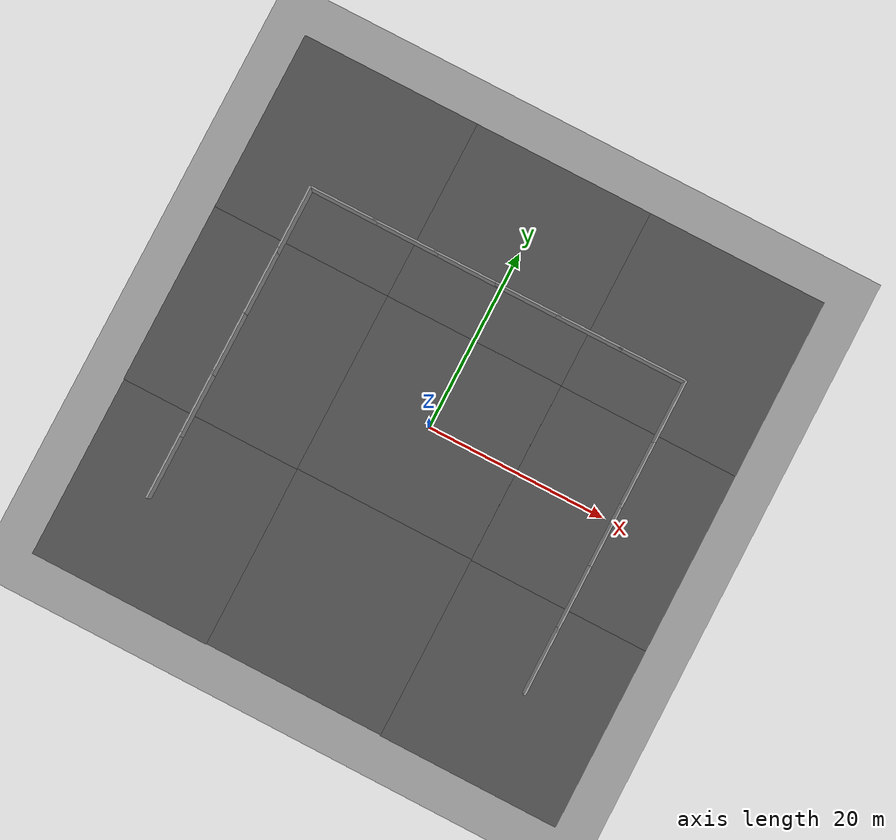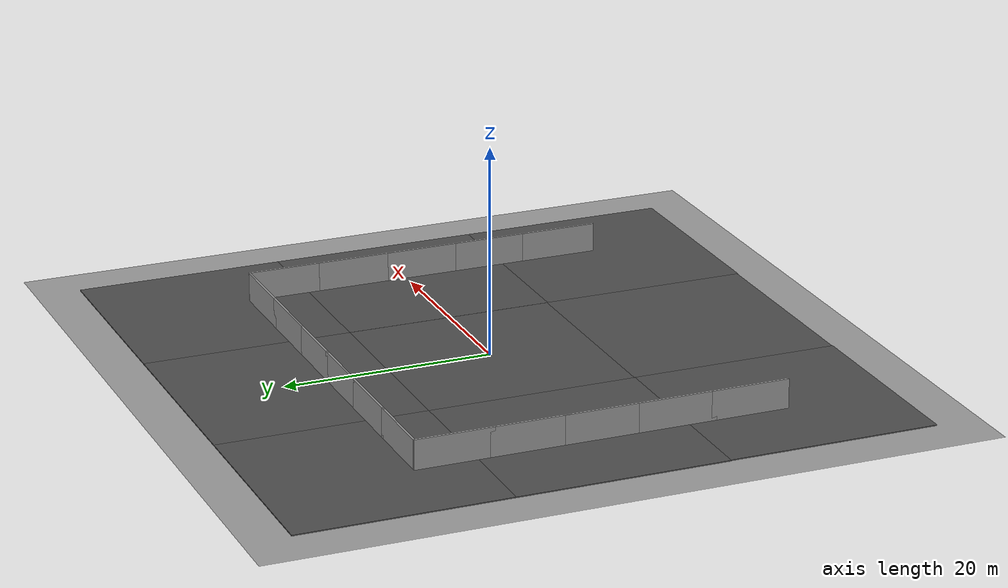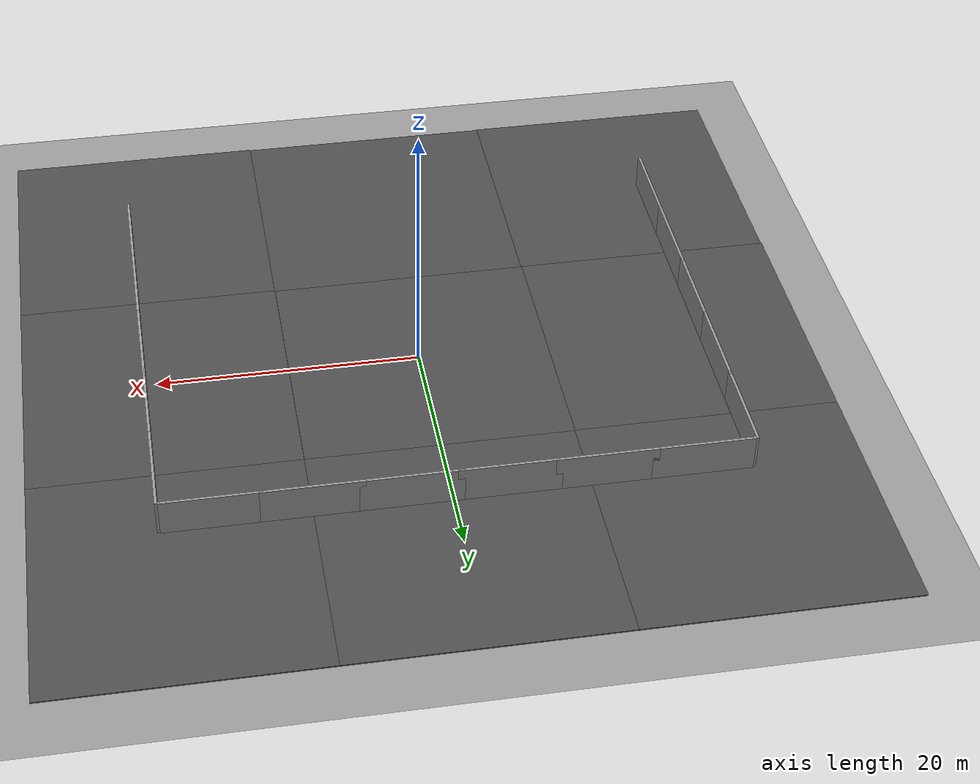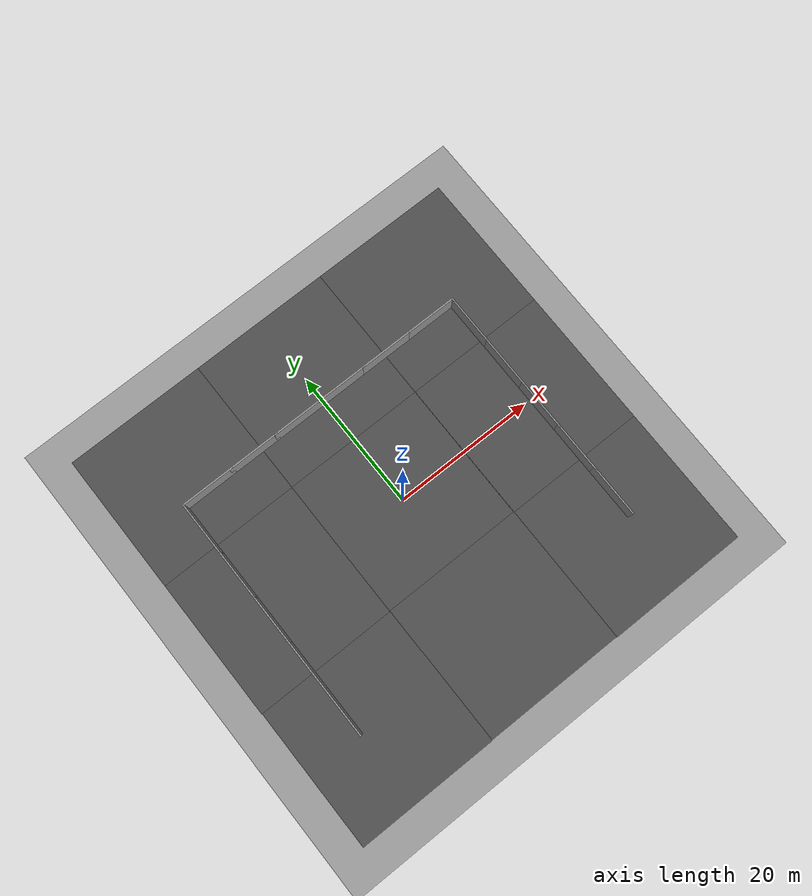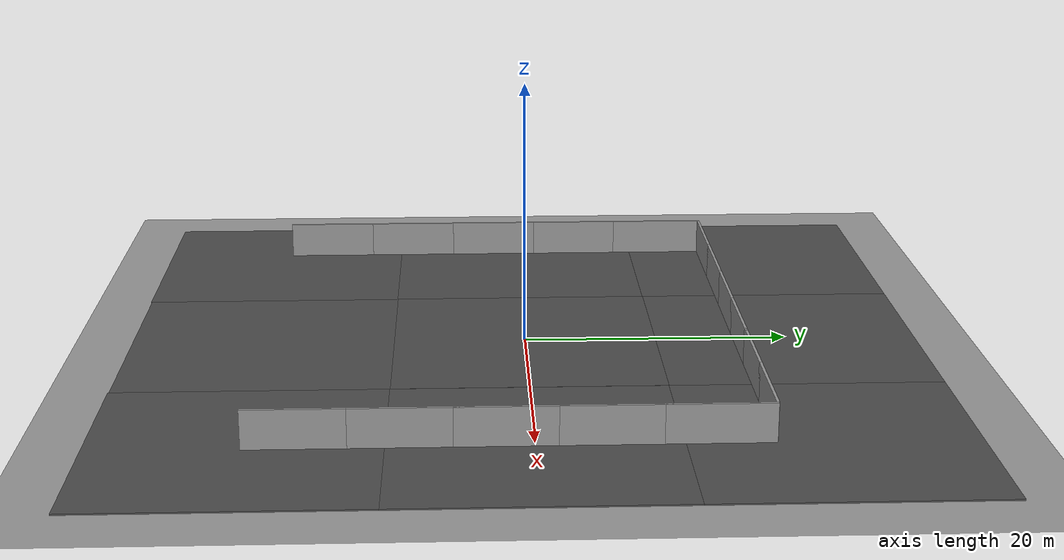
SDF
<sdf version="1.4">
 <world name="maskor_world">
  <scene><ambient>0.5 0.5 0.5 1</ambient><background>0.5 0.5 0.5 1</background><shadows>1</shadows></scene>
  <physics type="ode">
   <gravity>0 0 -9.81</gravity>
   <ode>
    <solver><type>quick</type><iters>40</iters><sor>1</sor></solver>
    <constraints>
     <cfm>0</cfm>
     <erp>0.2</erp>
     <contact_max_correcting_vel>100</contact_max_correcting_vel>
     <contact_surface_layer>0</contact_surface_layer>
    </constraints>
   </ode>
   <real_time_update_rate>100</real_time_update_rate>
   <max_step_size>0.01</max_step_size>
   <real_time_factor>1</real_time_factor>
  </physics>
  <light name="sun" type="directional">
   <pose>0 0 10 0 -0 0</pose>
   <diffuse>0.8 0.8 0.8 1</diffuse>
   <specular>0.2 0.2 0.2 1</specular>
   <attenuation>
    <range>1000</range>
    <constant>0.9</constant>
    <linear>0.01</linear>
    <quadratic>0.001</quadratic>
   </attenuation>
   <direction>-0.5 0.1 -0.9</direction>
  </light>
  <model name="ground_plane_1">
   <static>1</static>
   <link name="link">
    <collision name="collision">
     <geometry><plane><normal>0 0 1</normal><size>100 100</size></plane></geometry>
     <surface><friction><ode><mu>100</mu><mu2>50</mu2></ode></friction></surface>
    </collision>
    <visual name="visual">
     <cast_shadows>0</cast_shadows>
     <geometry><plane><normal>0 0 1</normal><size>100 100</size></plane></geometry>
     <material>
      <script><uri>file://media/materials/scripts/gazebo.material</uri><name>Gazebo/Grey</name></script>
     </material>
    </visual>
    <velocity_decay><linear>0</linear><angular>0</angular></velocity_decay>
   </link>
  </model>
  <model name="asphalt_plane_1">
   <static>1</static>
   <link name="link">
    <collision name="collision"><geometry><box><size>20 20 0.1</size></box></geometry></collision>
    <visual name="visual">
     <cast_shadows>0</cast_shadows>
     <geometry><box><size>20 20 0.1</size></box></geometry>
     <material>
      <script>
       <uri>model://asphalt_plane/materials/scripts</uri>
       <uri>model://asphalt_plane/materials/textures</uri>
       <name>vrc/asphalt</name>
      </script>
     </material>
    </visual>
    <velocity_decay><linear>0</linear><angular>0</angular></velocity_decay>
   </link>
   <pose>-0.016146 0.033011 0 0 -0 0</pose>
  </model>
  <model name="asphalt_plane_2">
   <static>1</static>
   <link name="link">
    <collision name="collision"><geometry><box><size>20 20 0.1</size></box></geometry></collision>
    <visual name="visual">
     <cast_shadows>0</cast_shadows>
     <geometry><box><size>20 20 0.1</size></box></geometry>
     <material>
      <script>
       <uri>model://asphalt_plane/materials/scripts</uri>
       <uri>model://asphalt_plane/materials/textures</uri>
       <name>vrc/asphalt</name>
      </script>
     </material>
    </visual>
    <velocity_decay><linear>0</linear><angular>0</angular></velocity_decay>
   </link>
   <pose>0.023903 -19.9181 0 0 -0 0</pose>
  </model>
  <model name="asphalt_plane_3">
   <static>1</static>
   <link name="link">
    <collision name="collision"><geometry><box><size>20 20 0.1</size></box></geometry></collision>
    <visual name="visual">
     <cast_shadows>0</cast_shadows>
     <geometry><box><size>20 20 0.1</size></box></geometry>
     <material>
      <script>
       <uri>model://asphalt_plane/materials/scripts</uri>
       <uri>model://asphalt_plane/materials/textures</uri>
       <name>vrc/asphalt</name>
      </script>
     </material>
    </visual>
    <velocity_decay><linear>0</linear><angular>0</angular></velocity_decay>
   </link>
   <pose>0 20 0 0 -0 0</pose>
  </model>
  <model name="asphalt_plane_4">
   <static>1</static>
   <link name="link">
    <collision name="collision"><geometry><box><size>20 20 0.1</size></box></geometry></collision>
    <visual name="visual">
     <cast_shadows>0</cast_shadows>
     <geometry><box><size>20 20 0.1</size></box></geometry>
     <material>
      <script>
       <uri>model://asphalt_plane/materials/scripts</uri>
       <uri>model://asphalt_plane/materials/textures</uri>
       <name>vrc/asphalt</name>
      </script>
     </material>
    </visual>
    <velocity_decay><linear>0</linear><angular>0</angular></velocity_decay>
   </link>
   <pose>-20 0 0 0 -0 0</pose>
  </model>
  <model name="asphalt_plane_5">
   <static>1</static>
   <link name="link">
    <collision name="collision"><geometry><box><size>20 20 0.1</size></box></geometry></collision>
    <visual name="visual">
     <cast_shadows>0</cast_shadows>
     <geometry><box><size>20 20 0.1</size></box></geometry>
     <material>
      <script>
       <uri>model://asphalt_plane/materials/scripts</uri>
       <uri>model://asphalt_plane/materials/textures</uri>
       <name>vrc/asphalt</name>
      </script>
     </material>
    </visual>
    <velocity_decay><linear>0</linear><angular>0</angular></velocity_decay>
   </link>
   <pose>-19.9316 -19.9871 0 0 -0 0</pose>
  </model>
  <model name="asphalt_plane_6">
   <static>1</static>
   <link name="link">
    <collision name="collision"><geometry><box><size>20 20 0.1</size></box></geometry></collision>
    <visual name="visual">
     <cast_shadows>0</cast_shadows>
     <geometry><box><size>20 20 0.1</size></box></geometry>
     <material>
      <script>
       <uri>model://asphalt_plane/materials/scripts</uri>
       <uri>model://asphalt_plane/materials/textures</uri>
       <name>vrc/asphalt</name>
      </script>
     </material>
    </visual>
    <velocity_decay><linear>0</linear><angular>0</angular></velocity_decay>
   </link>
   <pose>-20 20 0 0 -0 0</pose>
  </model>
  <model name="asphalt_plane_7">
   <static>1</static>
   <link name="link">
    <collision name="collision"><geometry><box><size>20 20 0.1</size></box></geometry></collision>
    <visual name="visual">
     <cast_shadows>0</cast_shadows>
     <geometry><box><size>20 20 0.1</size></box></geometry>
     <material>
      <script>
       <uri>model://asphalt_plane/materials/scripts</uri>
       <uri>model://asphalt_plane/materials/textures</uri>
       <name>vrc/asphalt</name>
      </script>
     </material>
    </visual>
    <velocity_decay><linear>0</linear><angular>0</angular></velocity_decay>
   </link>
   <pose>20 0 0 0 -0 0</pose>
  </model>
  <model name="asphalt_plane_8">
   <static>1</static>
   <link name="link">
    <collision name="collision"><geometry><box><size>20 20 0.1</size></box></geometry></collision>
    <visual name="visual">
     <cast_shadows>0</cast_shadows>
     <geometry><box><size>20 20 0.1</size></box></geometry>
     <material>
      <script>
       <uri>model://asphalt_plane/materials/scripts</uri>
       <uri>model://asphalt_plane/materials/textures</uri>
       <name>vrc/asphalt</name>
      </script>
     </material>
    </visual>
    <velocity_decay><linear>0</linear><angular>0</angular></velocity_decay>
   </link>
   <pose>20 -20 0 0 -0 0</pose>
  </model>
  <model name="asphalt_plane_9">
   <static>1</static>
   <link name="link">
    <collision name="collision"><geometry><box><size>20 20 0.1</size></box></geometry></collision>
    <visual name="visual">
     <cast_shadows>0</cast_shadows>
     <geometry><box><size>20 20 0.1</size></box></geometry>
     <material>
      <script>
       <uri>model://asphalt_plane/materials/scripts</uri>
       <uri>model://asphalt_plane/materials/textures</uri>
       <name>vrc/asphalt</name>
      </script>
     </material>
    </visual>
    <velocity_decay><linear>0</linear><angular>0</angular></velocity_decay>
   </link>
   <pose>20 20 0 0 -0 0</pose>
  </model>
  <model name="grey_wall_1">
   <static>1</static>
   <link name="link">
    <pose>0 0 1.4 0 -0 0</pose>
    <collision name="collision"><geometry><box><size>7.5 0.2 2.8</size></box></geometry></collision>
    <visual name="visual">
     <cast_shadows>0</cast_shadows>
     <geometry><box><size>7.5 0.2 2.8</size></box></geometry>
     <material>
      <script>
       <uri>model://grey_wall/materials/scripts</uri>
       <uri>model://grey_wall/materials/textures</uri>
       <name>vrc/grey_wall</name>
      </script>
     </material>
    </visual>
    <velocity_decay><linear>0</linear><angular>0</angular></velocity_decay>
   </link>
   <pose>-18 16 0.2 0 -0 0</pose>
  </model>
  <model name="grey_wall_2">
   <static>1</static>
   <link name="link">
    <pose>0 0 1.4 0 -0 0</pose>
    <collision name="collision"><geometry><box><size>7.5 0.2 2.8</size></box></geometry></collision>
    <visual name="visual">
     <cast_shadows>0</cast_shadows>
     <geometry><box><size>7.5 0.2 2.8</size></box></geometry>
     <material>
      <script>
       <uri>model://grey_wall/materials/scripts</uri>
       <uri>model://grey_wall/materials/textures</uri>
       <name>vrc/grey_wall</name>
      </script>
     </material>
    </visual>
    <velocity_decay><linear>0</linear><angular>0</angular></velocity_decay>
   </link>
   <pose>-11 16 0.2 0 -0 0</pose>
  </model>
  <model name="grey_wall_3">
   <static>1</static>
   <link name="link">
    <pose>0 0 1.4 0 -0 0</pose>
    <collision name="collision"><geometry><box><size>7.5 0.2 2.8</size></box></geometry></collision>
    <visual name="visual">
     <cast_shadows>0</cast_shadows>
     <geometry><box><size>7.5 0.2 2.8</size></box></geometry>
     <material>
      <script>
       <uri>model://grey_wall/materials/scripts</uri>
       <uri>model://grey_wall/materials/textures</uri>
       <name>vrc/grey_wall</name>
      </script>
     </material>
    </visual>
    <velocity_decay><linear>0</linear><angular>0</angular></velocity_decay>
   </link>
   <pose>-4 16 0.2 0 -0 0</pose>
  </model>
  <model name="grey_wall_4">
   <static>1</static>
   <link name="link">
    <pose>0 0 1.4 0 -0 0</pose>
    <collision name="collision"><geometry><box><size>7.5 0.2 2.8</size></box></geometry></collision>
    <visual name="visual">
     <cast_shadows>0</cast_shadows>
     <geometry><box><size>7.5 0.2 2.8</size></box></geometry>
     <material>
      <script>
       <uri>model://grey_wall/materials/scripts</uri>
       <uri>model://grey_wall/materials/textures</uri>
       <name>vrc/grey_wall</name>
      </script>
     </material>
    </visual>
    <velocity_decay><linear>0</linear><angular>0</angular></velocity_decay>
   </link>
   <pose>3 16 0.2 0 -0 0</pose>
  </model>
  <model name="grey_wall_5">
   <static>1</static>
   <link name="link">
    <pose>0 0 1.4 0 -0 0</pose>
    <collision name="collision"><geometry><box><size>7.5 0.2 2.8</size></box></geometry></collision>
    <visual name="visual">
     <cast_shadows>0</cast_shadows>
     <geometry><box><size>7.5 0.2 2.8</size></box></geometry>
     <material>
      <script>
       <uri>model://grey_wall/materials/scripts</uri>
       <uri>model://grey_wall/materials/textures</uri>
       <name>vrc/grey_wall</name>
      </script>
     </material>
    </visual>
    <velocity_decay><linear>0</linear><angular>0</angular></velocity_decay>
   </link>
   <pose>10 16 0.2 0 -0 0</pose>
  </model>
  <model name="grey_wall_6">
   <static>1</static>
   <link name="link">
    <pose>0 0 1.4 0 -0 0</pose>
    <collision name="collision"><geometry><box><size>7.5 0.2 2.8</size></box></geometry></collision>
    <visual name="visual">
     <cast_shadows>0</cast_shadows>
     <geometry><box><size>7.5 0.2 2.8</size></box></geometry>
     <material>
      <script>
       <uri>model://grey_wall/materials/scripts</uri>
       <uri>model://grey_wall/materials/textures</uri>
       <name>vrc/grey_wall</name>
      </script>
     </material>
    </visual>
    <velocity_decay><linear>0</linear><angular>0</angular></velocity_decay>
   </link>
   <pose>17 16 0.2 0 -0 0</pose>
  </model>
  <model name="grey_wall_7">
   <static>1</static>
   <link name="link">
    <pose>0 0 1.4 0 -0 0</pose>
    <collision name="collision"><geometry><box><size>7.5 0.2 2.8</size></box></geometry></collision>
    <visual name="visual">
     <cast_shadows>0</cast_shadows>
     <geometry><box><size>7.5 0.2 2.8</size></box></geometry>
     <material>
      <script>
       <uri>model://grey_wall/materials/scripts</uri>
       <uri>model://grey_wall/materials/textures</uri>
       <name>vrc/grey_wall</name>
      </script>
     </material>
    </visual>
    <velocity_decay><linear>0</linear><angular>0</angular></velocity_decay>
   </link>
   <pose>20.85 12.3 0.2 0 -0 1.5708</pose>
  </model>
  <model name="grey_wall_8">
   <static>1</static>
   <link name="link">
    <pose>0 0 1.4 0 -0 0</pose>
    <collision name="collision"><geometry><box><size>7.5 0.2 2.8</size></box></geometry></collision>
    <visual name="visual">
     <cast_shadows>0</cast_shadows>
     <geometry><box><size>7.5 0.2 2.8</size></box></geometry>
     <material>
      <script>
       <uri>model://grey_wall/materials/scripts</uri>
       <uri>model://grey_wall/materials/textures</uri>
       <name>vrc/grey_wall</name>
      </script>
     </material>
    </visual>
    <velocity_decay><linear>0</linear><angular>0</angular></velocity_decay>
   </link>
   <pose>20.85 5.3 0.2 0 -0 1.5708</pose>
  </model>
  <model name="grey_wall_9">
   <static>1</static>
   <link name="link">
    <pose>0 0 1.4 0 -0 0</pose>
    <collision name="collision"><geometry><box><size>7.5 0.2 2.8</size></box></geometry></collision>
    <visual name="visual">
     <cast_shadows>0</cast_shadows>
     <geometry><box><size>7.5 0.2 2.8</size></box></geometry>
     <material>
      <script>
       <uri>model://grey_wall/materials/scripts</uri>
       <uri>model://grey_wall/materials/textures</uri>
       <name>vrc/grey_wall</name>
      </script>
     </material>
    </visual>
    <velocity_decay><linear>0</linear><angular>0</angular></velocity_decay>
   </link>
   <pose>20.85 -1.7 0.2 0 -0 1.5708</pose>
  </model>
  <model name="grey_wall_10">
   <static>1</static>
   <link name="link">
    <pose>0 0 1.4 0 -0 0</pose>
    <collision name="collision"><geometry><box><size>7.5 0.2 2.8</size></box></geometry></collision>
    <visual name="visual">
     <cast_shadows>0</cast_shadows>
     <geometry><box><size>7.5 0.2 2.8</size></box></geometry>
     <material>
      <script>
       <uri>model://grey_wall/materials/scripts</uri>
       <uri>model://grey_wall/materials/textures</uri>
       <name>vrc/grey_wall</name>
      </script>
     </material>
    </visual>
    <velocity_decay><linear>0</linear><angular>0</angular></velocity_decay>
   </link>
   <pose>20.85 -8.7 0.2 0 -0 1.5708</pose>
  </model>
  <model name="grey_wall_11">
   <static>1</static>
   <link name="link">
    <pose>0 0 1.4 0 -0 0</pose>
    <collision name="collision"><geometry><box><size>7.5 0.2 2.8</size></box></geometry></collision>
    <visual name="visual">
     <cast_shadows>0</cast_shadows>
     <geometry><box><size>7.5 0.2 2.8</size></box></geometry>
     <material>
      <script>
       <uri>model://grey_wall/materials/scripts</uri>
       <uri>model://grey_wall/materials/textures</uri>
       <name>vrc/grey_wall</name>
      </script>
     </material>
    </visual>
    <velocity_decay><linear>0</linear><angular>0</angular></velocity_decay>
   </link>
   <pose>20.85 -15.7 0.2 0 -0 1.5708</pose>
  </model>
  <model name="grey_wall_12">
   <static>1</static>
   <link name="link">
    <pose>0 0 1.4 0 -0 0</pose>
    <collision name="collision"><geometry><box><size>7.5 0.2 2.8</size></box></geometry></collision>
    <visual name="visual">
     <cast_shadows>0</cast_shadows>
     <geometry><box><size>7.5 0.2 2.8</size></box></geometry>
     <material>
      <script>
       <uri>model://grey_wall/materials/scripts</uri>
       <uri>model://grey_wall/materials/textures</uri>
       <name>vrc/grey_wall</name>
      </script>
     </material>
    </visual>
    <velocity_decay><linear>0</linear><angular>0</angular></velocity_decay>
   </link>
   <pose>-21.85 12.3 0.2 0 -0 1.5708</pose>
  </model>
  <model name="grey_wall_13">
   <static>1</static>
   <link name="link">
    <pose>0 0 1.4 0 -0 0</pose>
    <collision name="collision"><geometry><box><size>7.5 0.2 2.8</size></box></geometry></collision>
    <visual name="visual">
     <cast_shadows>0</cast_shadows>
     <geometry><box><size>7.5 0.2 2.8</size></box></geometry>
     <material>
      <script>
       <uri>model://grey_wall/materials/scripts</uri>
       <uri>model://grey_wall/materials/textures</uri>
       <name>vrc/grey_wall</name>
      </script>
     </material>
    </visual>
    <velocity_decay><linear>0</linear><angular>0</angular></velocity_decay>
   </link>
   <pose>-21.85 5.3 0.2 0 -0 1.5708</pose>
  </model>
  <model name="grey_wall_14">
   <static>1</static>
   <link name="link">
    <pose>0 0 1.4 0 -0 0</pose>
    <collision name="collision"><geometry><box><size>7.5 0.2 2.8</size></box></geometry></collision>
    <visual name="visual">
     <cast_shadows>0</cast_shadows>
     <geometry><box><size>7.5 0.2 2.8</size></box></geometry>
     <material>
      <script>
       <uri>model://grey_wall/materials/scripts</uri>
       <uri>model://grey_wall/materials/textures</uri>
       <name>vrc/grey_wall</name>
      </script>
     </material>
    </visual>
    <velocity_decay><linear>0</linear><angular>0</angular></velocity_decay>
   </link>
   <pose>-21.85 -1.7 0.2 0 -0 1.5708</pose>
  </model>
  <model name="grey_wall_15">
   <static>1</static>
   <link name="link">
    <pose>0 0 1.4 0 -0 0</pose>
    <collision name="collision"><geometry><box><size>7.5 0.2 2.8</size></box></geometry></collision>
    <visual name="visual">
     <cast_shadows>0</cast_shadows>
     <geometry><box><size>7.5 0.2 2.8</size></box></geometry>
     <material>
      <script>
       <uri>model://grey_wall/materials/scripts</uri>
       <uri>model://grey_wall/materials/textures</uri>
       <name>vrc/grey_wall</name>
      </script>
     </material>
    </visual>
    <velocity_decay><linear>0</linear><angular>0</angular></velocity_decay>
   </link>
   <pose>-21.85 -8.7 0.2 0 -0 1.5708</pose>
  </model>
  <model name="grey_wall_16">
   <static>1</static>
   <link name="link">
    <pose>0 0 1.4 0 -0 0</pose>
    <collision name="collision"><geometry><box><size>7.5 0.2 2.8</size></box></geometry></collision>
    <visual name="visual">
     <cast_shadows>0</cast_shadows>
     <geometry><box><size>7.5 0.2 2.8</size></box></geometry>
     <material>
      <script>
       <uri>model://grey_wall/materials/scripts</uri>
       <uri>model://grey_wall/materials/textures</uri>
       <name>vrc/grey_wall</name>
      </script>
     </material>
    </visual>
    <velocity_decay><linear>0</linear><angular>0</angular></velocity_decay>
   </link>
   <pose>-21.85 -15.7 0.2 0 -0 1.5708</pose>
  </model>
  <spherical_coordinates>
   <surface_model>EARTH_WGS84</surface_model>
   <latitude_deg>0</latitude_deg>
   <longitude_deg>0</longitude_deg>
   <elevation>0</elevation>
   <heading_deg>0</heading_deg>
  </spherical_coordinates>
 </world>
</sdf>
